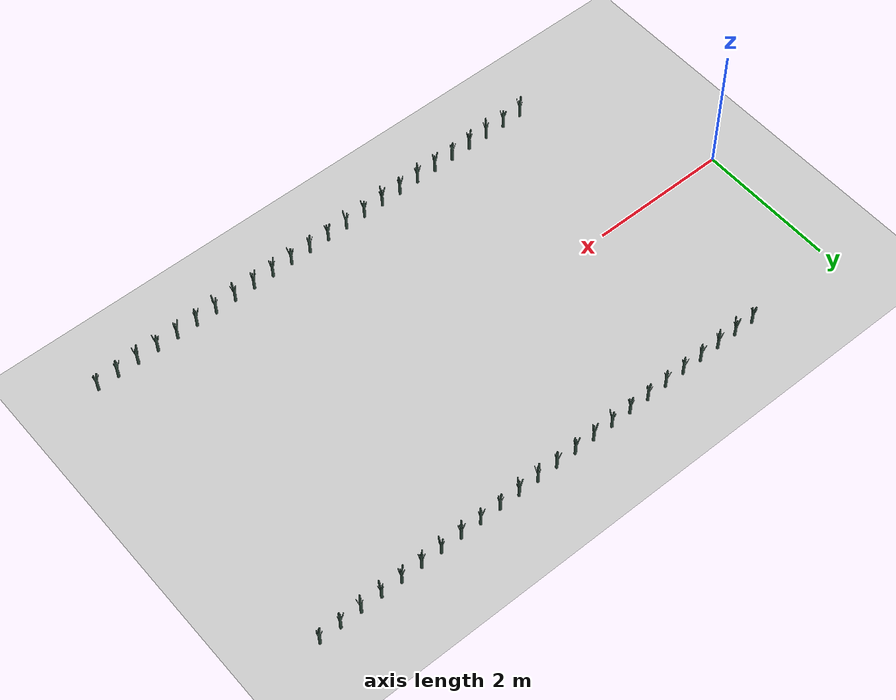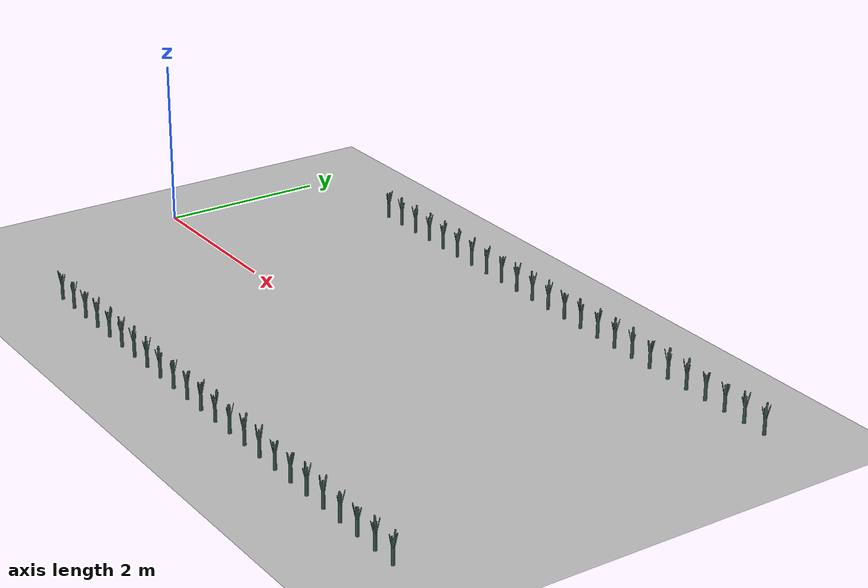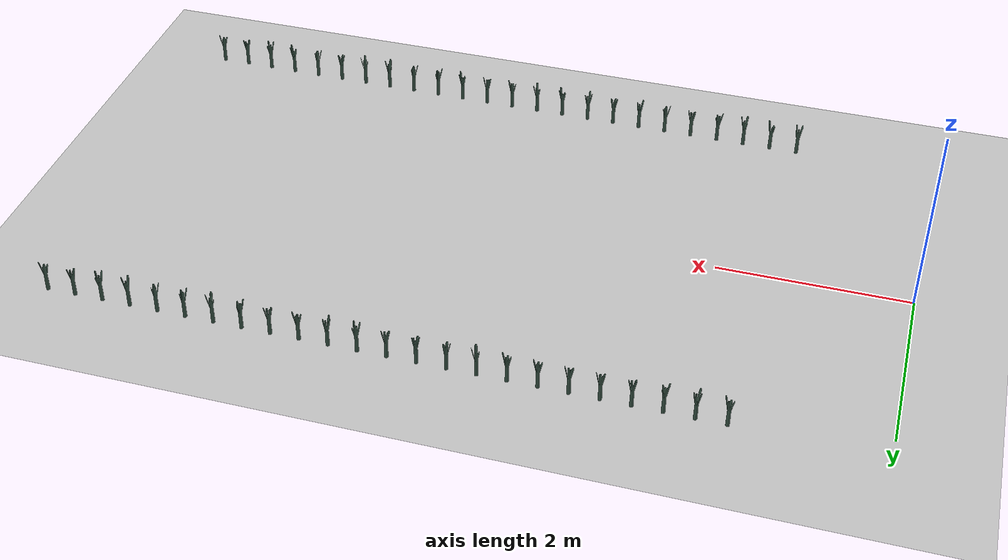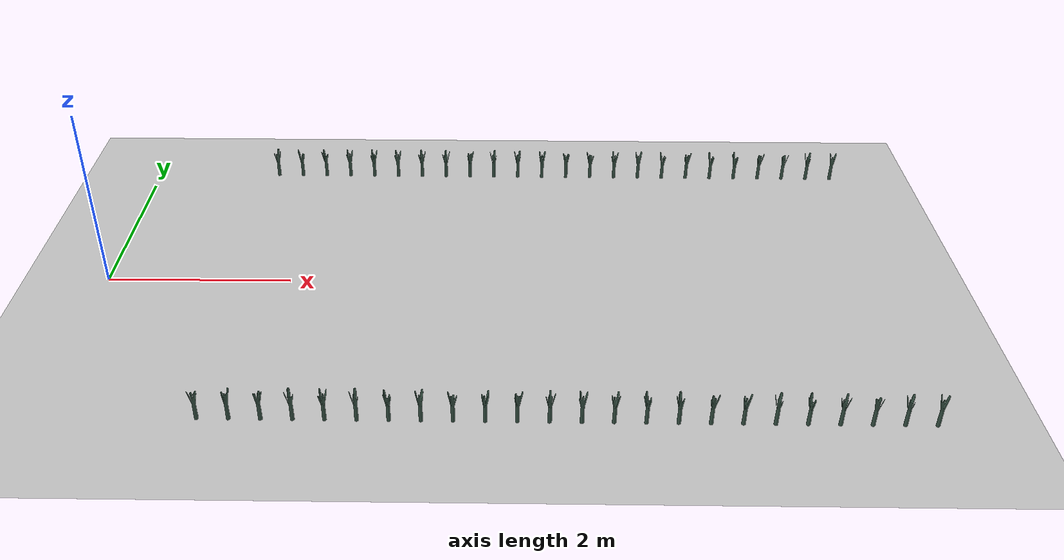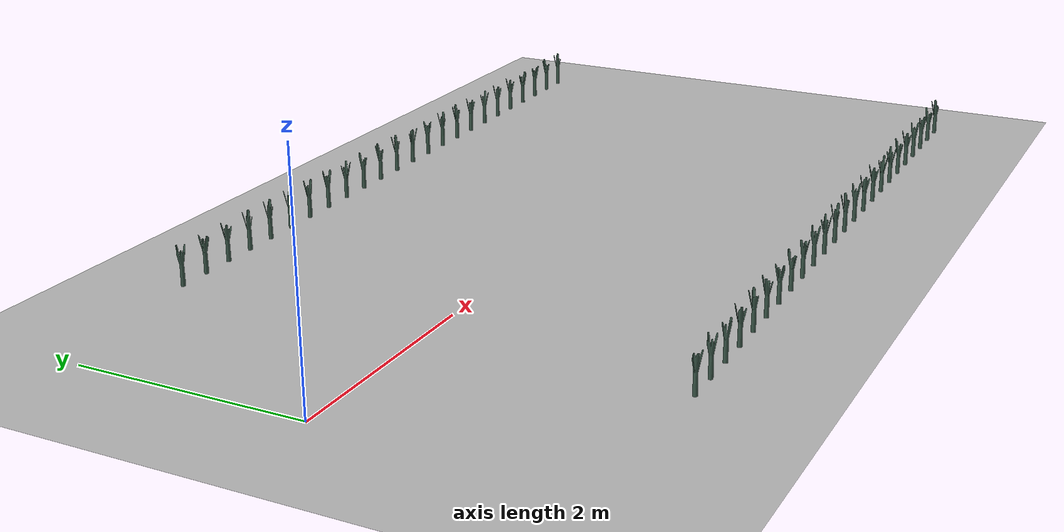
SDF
<sdf version="1.6">
 <world name="default">
  <light name="sun" type="directional">
   <pose>0 0 10 0 -0 0</pose>
   <diffuse>0.5 0.5 0.5 1</diffuse>
   <specular>0.1 0.1 0.1 1</specular>
   <attenuation>
    <range>1000</range>
    <constant>0.9</constant>
    <linear>0.01</linear>
    <quadratic>0.001</quadratic>
   </attenuation>
   <direction>0.9 0.5 -1</direction>
  </light>
  <scene><background>130 200 255 1</background><ambient>130 140 140 1</ambient></scene>
  <include><uri>model://dirt_plane</uri></include>
  <include><uri>model://Leek</uri><pose>1.500000 2.250000 0.15 0 0 -25.355098</pose><static>0</static></include>
  <include><uri>model://Leek</uri><pose>1.800000 2.250000 0.15 0 0 90.652663</pose><static>0</static></include>
  <include>
   <uri>model://Leek</uri>
   <pose>2.100000 2.250000 0.15 0 0 -173.743538</pose>
   <static>0</static>
  </include>
  <include><uri>model://Leek</uri><pose>2.400000 2.250000 0.15 0 0 0.614573</pose><static>0</static></include>
  <include><uri>model://Leek</uri><pose>2.700000 2.250000 0.15 0 0 19.322527</pose><static>0</static></include>
  <include><uri>model://Leek</uri><pose>3.000000 2.250000 0.15 0 0 88.456309</pose><static>0</static></include>
  <include><uri>model://Leek</uri><pose>3.300000 2.250000 0.15 0 0 -24.990315</pose><static>0</static></include>
  <include><uri>model://Leek</uri><pose>3.600000 2.250000 0.15 0 0 -37.715399</pose><static>0</static></include>
  <include><uri>model://Leek</uri><pose>3.900000 2.250000 0.15 0 0 74.212893</pose><static>0</static></include>
  <include><uri>model://Leek</uri><pose>4.200000 2.250000 0.15 0 0 177.306701</pose><static>0</static></include>
  <include><uri>model://Leek</uri><pose>4.500000 2.250000 0.15 0 0 -99.419979</pose><static>0</static></include>
  <include><uri>model://Leek</uri><pose>4.800000 2.250000 0.15 0 0 138.944742</pose><static>0</static></include>
  <include>
   <uri>model://Leek</uri>
   <pose>5.100000 2.250000 0.15 0 0 -128.121890</pose>
   <static>0</static>
  </include>
  <include><uri>model://Leek</uri><pose>5.400000 2.250000 0.15 0 0 122.197283</pose><static>0</static></include>
  <include><uri>model://Leek</uri><pose>5.700000 2.250000 0.15 0 0 -87.678514</pose><static>0</static></include>
  <include><uri>model://Leek</uri><pose>6.000000 2.250000 0.15 0 0 57.369428</pose><static>0</static></include>
  <include><uri>model://Leek</uri><pose>6.300000 2.250000 0.15 0 0 58.916696</pose><static>0</static></include>
  <include>
   <uri>model://Leek</uri>
   <pose>6.600000 2.250000 0.15 0 0 -158.443629</pose>
   <static>0</static>
  </include>
  <include><uri>model://Leek</uri><pose>6.900000 2.250000 0.15 0 0 -22.933215</pose><static>0</static></include>
  <include>
   <uri>model://Leek</uri>
   <pose>7.200000 2.250000 0.15 0 0 -167.622063</pose>
   <static>0</static>
  </include>
  <include><uri>model://Leek</uri><pose>7.500000 2.250000 0.15 0 0 -14.190619</pose><static>0</static></include>
  <include><uri>model://Leek</uri><pose>7.800000 2.250000 0.15 0 0 16.781476</pose><static>0</static></include>
  <include><uri>model://Leek</uri><pose>8.100000 2.250000 0.15 0 0 32.444457</pose><static>0</static></include>
  <include>
   <uri>model://Leek</uri>
   <pose>8.400000 2.250000 0.15 0 0 -131.420280</pose>
   <static>0</static>
  </include>
  <include><uri>model://Leek</uri><pose>1.485724 -2.250000 0.15 0 0 -2.457529</pose><static>0</static></include>
  <include>
   <uri>model://Leek</uri>
   <pose>1.785724 -2.250000 0.15 0 0 143.837546</pose>
   <static>0</static>
  </include>
  <include>
   <uri>model://Leek</uri>
   <pose>2.085724 -2.250000 0.15 0 0 -71.117773</pose>
   <static>0</static>
  </include>
  <include><uri>model://Leek</uri><pose>2.385724 -2.250000 0.15 0 0 83.604500</pose><static>0</static></include>
  <include><uri>model://Leek</uri><pose>2.685724 -2.250000 0.15 0 0 6.812181</pose><static>0</static></include>
  <include><uri>model://Leek</uri><pose>2.985724 -2.250000 0.15 0 0 95.813889</pose><static>0</static></include>
  <include>
   <uri>model://Leek</uri>
   <pose>3.285724 -2.250000 0.15 0 0 172.066222</pose>
   <static>0</static>
  </include>
  <include>
   <uri>model://Leek</uri>
   <pose>3.585724 -2.250000 0.15 0 0 145.599551</pose>
   <static>0</static>
  </include>
  <include><uri>model://Leek</uri><pose>3.885724 -2.250000 0.15 0 0 65.719256</pose><static>0</static></include>
  <include><uri>model://Leek</uri><pose>4.185724 -2.250000 0.15 0 0 68.371454</pose><static>0</static></include>
  <include><uri>model://Leek</uri><pose>4.485724 -2.250000 0.15 0 0 93.020392</pose><static>0</static></include>
  <include>
   <uri>model://Leek</uri>
   <pose>4.785724 -2.250000 0.15 0 0 175.849948</pose>
   <static>0</static>
  </include>
  <include><uri>model://Leek</uri><pose>5.085724 -2.250000 0.15 0 0 44.479127</pose><static>0</static></include>
  <include><uri>model://Leek</uri><pose>5.385724 -2.250000 0.15 0 0 5.615819</pose><static>0</static></include>
  <include>
   <uri>model://Leek</uri>
   <pose>5.685724 -2.250000 0.15 0 0 -129.957620</pose>
   <static>0</static>
  </include>
  <include>
   <uri>model://Leek</uri>
   <pose>5.985724 -2.250000 0.15 0 0 -42.230075</pose>
   <static>0</static>
  </include>
  <include>
   <uri>model://Leek</uri>
   <pose>6.285724 -2.250000 0.15 0 0 124.045056</pose>
   <static>0</static>
  </include>
  <include>
   <uri>model://Leek</uri>
   <pose>6.585724 -2.250000 0.15 0 0 130.724583</pose>
   <static>0</static>
  </include>
  <include>
   <uri>model://Leek</uri>
   <pose>6.885724 -2.250000 0.15 0 0 -143.283552</pose>
   <static>0</static>
  </include>
  <include><uri>model://Leek</uri><pose>7.185724 -2.250000 0.15 0 0 39.466719</pose><static>0</static></include>
  <include><uri>model://Leek</uri><pose>7.485724 -2.250000 0.15 0 0 74.822708</pose><static>0</static></include>
  <include>
   <uri>model://Leek</uri>
   <pose>7.785724 -2.250000 0.15 0 0 -121.775151</pose>
   <static>0</static>
  </include>
  <include>
   <uri>model://Leek</uri>
   <pose>8.085724 -2.250000 0.15 0 0 -49.271249</pose>
   <static>0</static>
  </include>
  <include>
   <uri>model://Leek</uri>
   <pose>8.385724 -2.250000 0.15 0 0 -49.815599</pose>
   <static>0</static>
  </include>
 </world>
</sdf>

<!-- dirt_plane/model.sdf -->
<sdf version="1.4">
<model name="dirt_plane">
  <static>true</static>
    <link name="link">
      <collision name="collision">
        <geometry>
          <plane>
            <normal>0 0 1</normal>
            <size>100 100</size>
          </plane>
        </geometry>
        <surface>
          <friction>
            <ode>
              <mu>0.99</mu>
              <mu2>0.99</mu2>
            </ode>
          </friction>
        </surface>
      </collision>
      <visual name="visual">
        <cast_shadows>false</cast_shadows>
        <geometry>
          <plane>
            <normal>0 0 1</normal>
            <size>100 100</size>
          </plane>
        </geometry>
        <material>
          <script>
            <uri>model://ground_plane/materials/scripts/my_ground_plane.material</uri>
            <uri>model://ground_plane/materials/textures</uri>
            <name>my_ground_plane/Dirt</name>
          </script>
        </material>
      </visual>
    </link>
  </model>
</sdf>

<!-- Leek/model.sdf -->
<sdf version='1.6'>
  <model name='Leek'>
    <link name='link'>
      <pose frame=''>0 0 0 0 -0 0</pose>
      <inertial>
        <mass>1</mass>
        <inertia>
          <ixx>0.145833</ixx>
          <ixy>0</ixy>
          <ixz>0</ixz>
          <iyy>0.145833</iyy>
          <iyz>0</iyz>
          <izz>0.125</izz>
        </inertia>
        <pose frame=''>0 0 0 0 -0 0</pose>
      </inertial>
      <self_collide>0</self_collide>
      <kinematic>0</kinematic>
      <gravity>1</gravity>
      <visual name='visual'>
        <geometry>
          <mesh>
            <uri>model://Leek/Poireau.dae</uri>
            <scale>1 1 1</scale>
          </mesh>
        </geometry>
        <material>
          <script>
            <name>Gazebo/Grey</name>
            <uri>file://media/materials/scripts/gazebo.material</uri>
          </script>
          <ambient>0.3 0.6 0.5 0</ambient>
          <diffuse>0.2 0.3 0.25 0</diffuse>
          <specular>0 0 0 1</specular>
          <emissive>0 0 0 1</emissive>
          <shader type='vertex'>
            <normal_map>__default__</normal_map>
          </shader>
        </material>
        <pose frame=''>0 0 -0.08 0 -0 0</pose>
        <cast_shadows>1</cast_shadows>
        <transparency>0</transparency>
      </visual>
      <collision name='collision'>
        <laser_retro>0</laser_retro>
        <max_contacts>10</max_contacts>
        <pose frame=''>0 0 0 0 -0 0</pose>
        <geometry>
          <cylinder>
            <radius>0.02</radius>
            <length>0.25</length>
          </cylinder>
        </geometry>
        <surface>
          <friction>
            <ode>
              <mu>1</mu>
              <mu2>1</mu2>
              <fdir1>0 0 0</fdir1>
              <slip1>0</slip1>
              <slip2>0</slip2>
            </ode>
            <torsional>
              <coefficient>1</coefficient>
              <patch_radius>0</patch_radius>
              <surface_radius>0</surface_radius>
              <use_patch_radius>1</use_patch_radius>
              <ode>
                <slip>0</slip>
              </ode>
            </torsional>
          </friction>
          <bounce>
            <restitution_coefficient>0</restitution_coefficient>
            <threshold>1e+06</threshold>
          </bounce>
          <contact>
            <collide_without_contact>0</collide_without_contact>
            <collide_without_contact_bitmask>1</collide_without_contact_bitmask>
            <collide_bitmask>1</collide_bitmask>
            <ode>
              <soft_cfm>0</soft_cfm>
              <soft_erp>0.2</soft_erp>
              <kp>1e+13</kp>
              <kd>1</kd>
              <max_vel>0.01</max_vel>
              <min_depth>0</min_depth>
            </ode>
            <bullet>
              <split_impulse>1</split_impulse>
              <split_impulse_penetration_threshold>-0.01</split_impulse_penetration_threshold>
              <soft_cfm>0</soft_cfm>
              <soft_erp>0.2</soft_erp>
              <kp>1e+13</kp>
              <kd>1</kd>
            </bullet>
          </contact>
        </surface>
      </collision>
    </link>
    <static>0</static>
    <allow_auto_disable>1</allow_auto_disable>
  </model>
</sdf>
